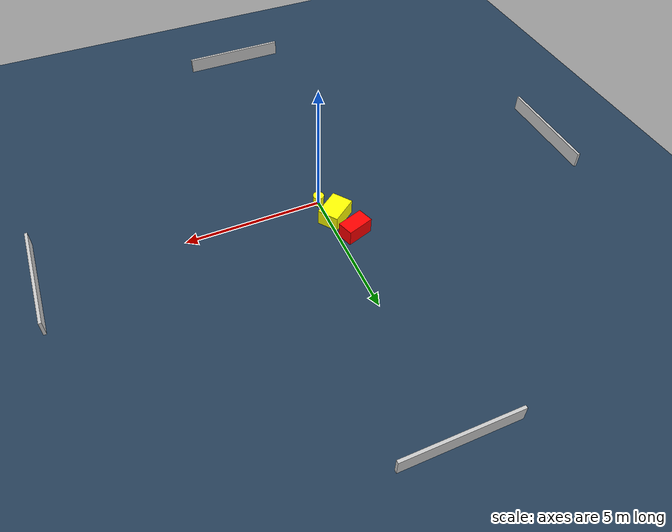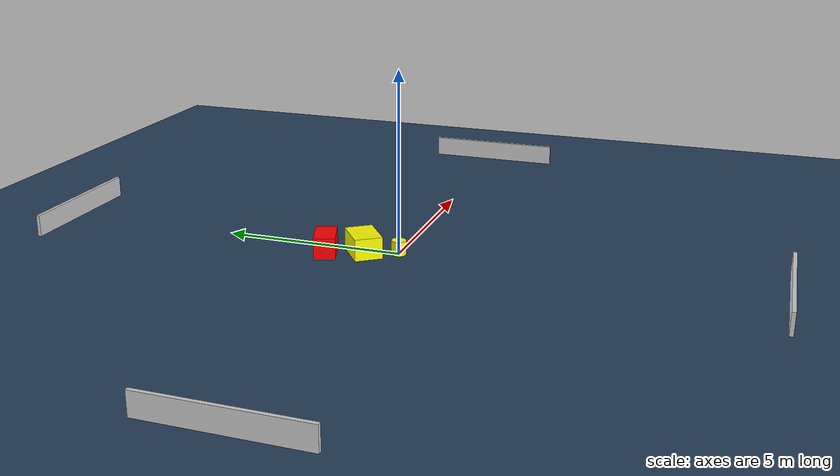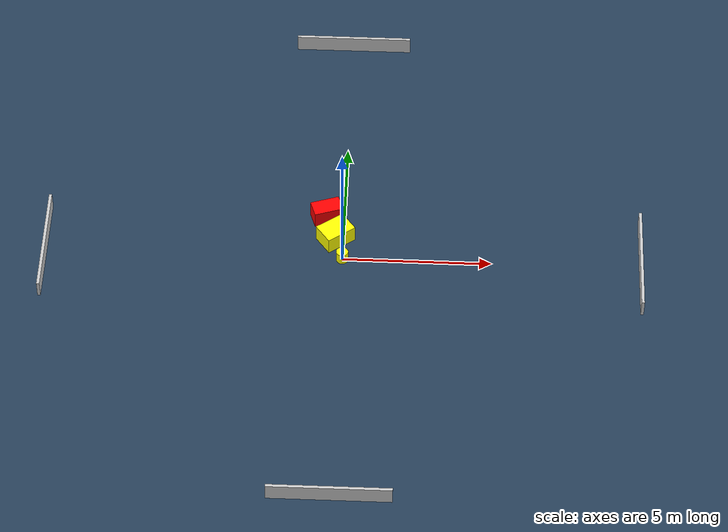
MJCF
<?xml version="1.0" ?>
<mujoco model="generated_environment">
  <option timestep="0.01" integrator="RK4" cone="elliptic"/>
  <default>
    <geom density="1"/>
  </default>
  <asset>
    <texture builtin="gradient" height="3072" name="skybox" rgb1="0.3 0.5 0.7" rgb2="0 0 0" type="skybox" width="512"/>
    <texture builtin="checker" height="300" name="groundplane" rgb1="0.2 0.3 0.4" rgb2="0.1 0.2 0.3" type="2d" width="300"/>
    <material name="groundplane" reflectance="0.2" texrepeat="5 5" texture="groundplane"/>
  </asset>
  <worldbody>
    <light dir="0 0 -1" directional="true" pos="0 0 1.5"/>
    <geom condim="3" friction="0.5 0.005 0.001" material="groundplane" name="floor" pos="0 0 0" size="0 0 0.05" type="plane"/>
    <body name="walls">
      <geom name="wall_1" condim="4" pos="-10.0 0.0 0.3" rgba="0.800000011920929 0.800000011920929 0.800000011920929 1.0" size="0.05 2.0 0.3" type="box"/>
      <geom name="wall_2" condim="4" pos="10.0 0.0 0.3" rgba="0.800000011920929 0.800000011920929 0.800000011920929 1.0" size="0.05 2.0 0.3" type="box"/>
      <geom name="wall_3" condim="4" pos="0.0 -10.0 0.3" rgba="0.800000011920929 0.800000011920929 0.800000011920929 1.0" size="2.0 0.05 0.3" type="box"/>
      <geom name="wall_4" condim="4" pos="0.0 10.0 0.3" rgba="0.800000011920929 0.800000011920929 0.800000011920929 1.0" size="2.0 0.05 0.3" type="box"/>
    </body>
    <body name="robot">
      <joint name="joint_x" type="slide" pos="0 0 0" axis="1 0 0"/>
      <joint name="joint_y" type="slide" pos="0 0 0" axis="0 1 0"/>
      <geom name="robot" type="cylinder" pos="0.0 0.0 0.2" size="0.2 0.2 0.0" mass="5.0" friction="1.0 0.005 0.0001" condim="4" rgba="1.0 1.0 0.0 1.0"/>
    </body>
    <body name="obstacle_1_movable">
      <geom name="obstacle_1_movable" condim="4" pos="-0.261551890775797 0.9112638175169729 0.3" euler="0 0 216.28080418901496" friction="0.0 0.005 0.001" rgba="1.0 1.0 0.0 1.0" size="0.5338793838107971 0.38632489985441154 0.3" type="box" mass="0.1"/>
      <joint type="free"/>
    </body>
    <body name="obstacle_2_static">
      <geom name="obstacle_2_static" condim="4" pos="-0.599035340135169 1.873887435744878 0.3" euler="0 0 18.53743919503212" friction="0.0 0.005 0.001" rgba="1.0 0.0 0.0 1.0" size="0.4969172686837601 0.29156031551975264 0.3" type="box"/>
    </body>
  </worldbody>
  <actuator>
    <motor name="actuator_x" joint="joint_x" gear="1" ctrlrange="-1 1"/>
    <motor name="actuator_y" joint="joint_y" gear="1" ctrlrange="-1 1"/>
  </actuator>
</mujoco>
